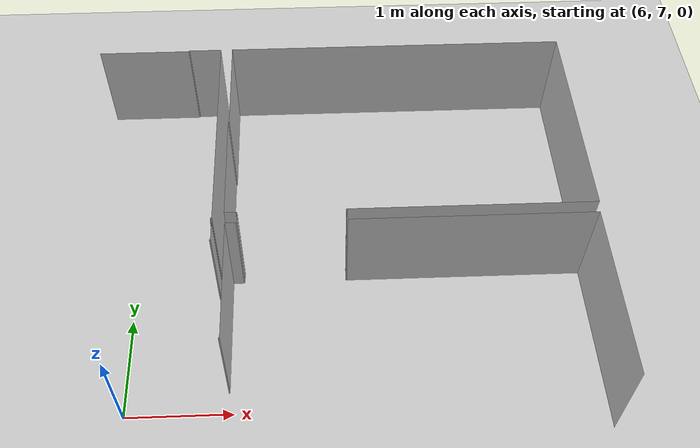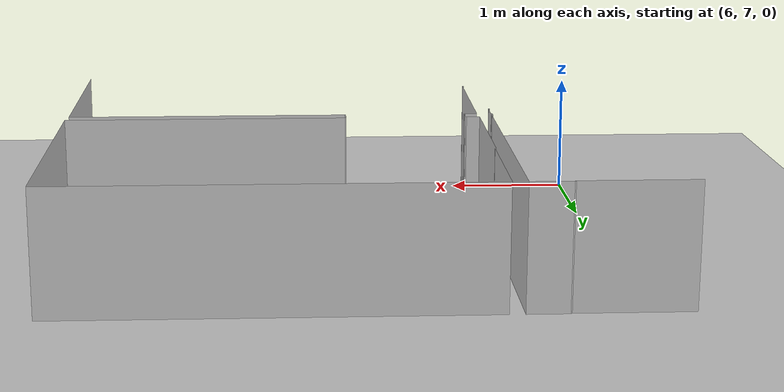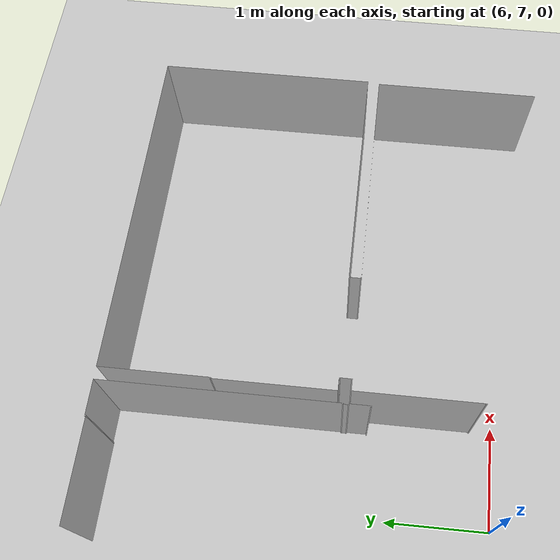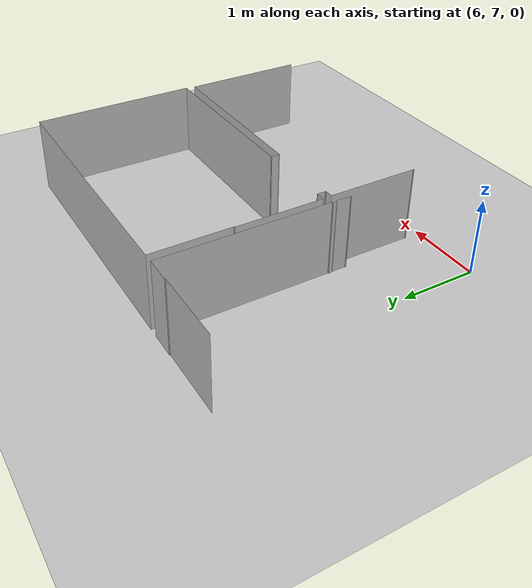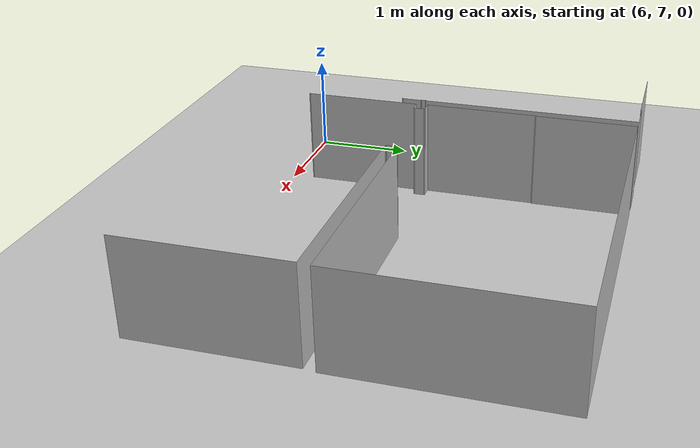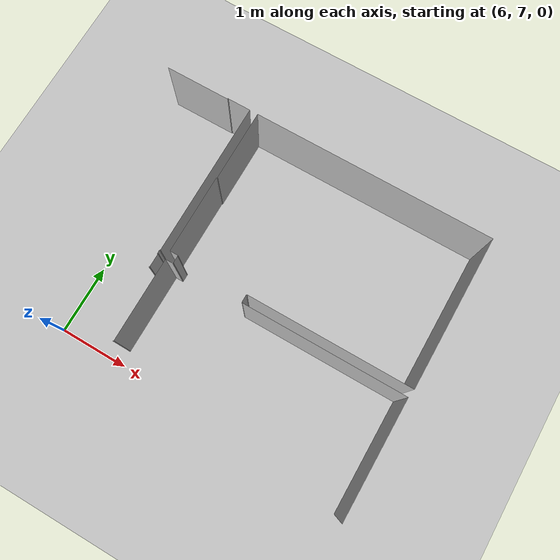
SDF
<sdf version="1.6">
 <world name="default">
  <model name="ground_plane">
   <static>1</static>
   <link name="link">
    <collision name="collision">
     <geometry><plane><normal>0 0 1</normal><size>100 100</size></plane></geometry>
     <surface><friction><ode><mu>100</mu><mu2>50</mu2></ode></friction></surface>
    </collision>
    <visual name="visual">
     <cast_shadows>0</cast_shadows>
     <geometry><plane><normal>0 0 1</normal><size>100 100</size></plane></geometry>
     <material>
      <script><uri>file://media/materials/scripts/gazebo.material</uri><name>Gazebo/Grey</name></script>
     </material>
    </visual>
   </link>
  </model>
  <model name="wall_46">
   <static>true</static>
   <link name="link">
    <collision name="collision"><geometry><box><size>0.9300000000000006 0.0 1</size></box></geometry></collision>
    <visual name="visual"><geometry><box><size>0.9300000000000006 0.0 1</size></box></geometry></visual>
   </link>
   <pose>6.025 10.7 0.5 0 0 0</pose>
  </model>
  <model name="wall_47">
   <static>true</static>
   <link name="link">
    <collision name="collision">
     <geometry><box><size>0.009999999999999787 0.010000000000001563 1</size></box></geometry>
    </collision>
    <visual name="visual">
     <geometry><box><size>0.009999999999999787 0.010000000000001563 1</size></box></geometry>
    </visual>
   </link>
   <pose>6.495 10.705 0.5 0 0 0</pose>
  </model>
  <model name="wall_48">
   <static>true</static>
   <link name="link">
    <collision name="collision"><geometry><box><size>0.33000000000000007 0.0 1</size></box></geometry></collision>
    <visual name="visual"><geometry><box><size>0.33000000000000007 0.0 1</size></box></geometry></visual>
   </link>
   <pose>6.665 10.71 0.5 0 0 0</pose>
  </model>
  <model name="wall_49">
   <static>true</static>
   <link name="link">
    <collision name="collision"><geometry><box><size>0.0 2.2300000000000004 1</size></box></geometry></collision>
    <visual name="visual"><geometry><box><size>0.0 2.2300000000000004 1</size></box></geometry></visual>
   </link>
   <pose>6.83 9.595 0.5 0 0 0</pose>
  </model>
  <model name="wall_50">
   <static>true</static>
   <link name="link">
    <collision name="collision">
     <geometry><box><size>0.009999999999999787 0.009999999999999787 1</size></box></geometry>
    </collision>
    <visual name="visual">
     <geometry><box><size>0.009999999999999787 0.009999999999999787 1</size></box></geometry>
    </visual>
   </link>
   <pose>6.825 8.475000000000001 0.5 0 0 0</pose>
  </model>
  <model name="wall_51">
   <static>true</static>
   <link name="link">
    <collision name="collision">
     <geometry><box><size>0.0 0.040000000000000924 1</size></box></geometry>
    </collision>
    <visual name="visual"><geometry><box><size>0.0 0.040000000000000924 1</size></box></geometry></visual>
   </link>
   <pose>6.82 8.45 0.5 0 0 0</pose>
  </model>
  <model name="wall_52">
   <static>true</static>
   <link name="link">
    <collision name="collision">
     <geometry><box><size>0.009999999999999787 0.009999999999999787 1</size></box></geometry>
    </collision>
    <visual name="visual">
     <geometry><box><size>0.009999999999999787 0.009999999999999787 1</size></box></geometry>
    </visual>
   </link>
   <pose>6.825 8.425 0.5 0 0 0</pose>
  </model>
  <model name="wall_53">
   <static>true</static>
   <link name="link">
    <collision name="collision"><geometry><box><size>0.0 0.1899999999999995 1</size></box></geometry></collision>
    <visual name="visual"><geometry><box><size>0.0 0.1899999999999995 1</size></box></geometry></visual>
   </link>
   <pose>6.83 8.325 0.5 0 0 0</pose>
  </model>
  <model name="wall_54">
   <static>true</static>
   <link name="link">
    <collision name="collision">
     <geometry><box><size>0.009999999999999787 0.009999999999999787 1</size></box></geometry>
    </collision>
    <visual name="visual">
     <geometry><box><size>0.009999999999999787 0.009999999999999787 1</size></box></geometry>
    </visual>
   </link>
   <pose>6.825 8.225000000000001 0.5 0 0 0</pose>
  </model>
  <model name="wall_60">
   <static>true</static>
   <link name="link">
    <collision name="collision">
     <geometry><box><size>0.009999999999999787 0.009999999999999787 1</size></box></geometry>
    </collision>
    <visual name="visual">
     <geometry><box><size>0.009999999999999787 0.009999999999999787 1</size></box></geometry>
    </visual>
   </link>
   <pose>6.945 7.215 0.5 0 0 0</pose>
  </model>
  <model name="wall_61">
   <static>true</static>
   <link name="link">
    <collision name="collision"><geometry><box><size>0.0 1.1900000000000004 1</size></box></geometry></collision>
    <visual name="visual"><geometry><box><size>0.0 1.1900000000000004 1</size></box></geometry></visual>
   </link>
   <pose>6.95 7.8149999999999995 0.5 0 0 0</pose>
  </model>
  <model name="wall_62">
   <static>true</static>
   <link name="link">
    <collision name="collision"><geometry><box><size>0.09999999999999964 0.0 1</size></box></geometry></collision>
    <visual name="visual"><geometry><box><size>0.09999999999999964 0.0 1</size></box></geometry></visual>
   </link>
   <pose>7.0 8.41 0.5 0 0 0</pose>
  </model>
  <model name="wall_63">
   <static>true</static>
   <link name="link">
    <collision name="collision">
     <geometry><box><size>0.009999999999999787 0.009999999999999787 1</size></box></geometry>
    </collision>
    <visual name="visual">
     <geometry><box><size>0.009999999999999787 0.009999999999999787 1</size></box></geometry>
    </visual>
   </link>
   <pose>7.055 8.415 0.5 0 0 0</pose>
  </model>
  <model name="wall_64">
   <static>true</static>
   <link name="link">
    <collision name="collision"><geometry><box><size>0.0 0.09999999999999964 1</size></box></geometry></collision>
    <visual name="visual"><geometry><box><size>0.0 0.09999999999999964 1</size></box></geometry></visual>
   </link>
   <pose>7.06 8.469999999999999 0.5 0 0 0</pose>
  </model>
  <model name="wall_65">
   <static>true</static>
   <link name="link">
    <collision name="collision">
     <geometry><box><size>0.009999999999999787 0.009999999999999787 1</size></box></geometry>
    </collision>
    <visual name="visual">
     <geometry><box><size>0.009999999999999787 0.009999999999999787 1</size></box></geometry>
    </visual>
   </link>
   <pose>7.055 8.524999999999999 0.5 0 0 0</pose>
  </model>
  <model name="wall_66">
   <static>true</static>
   <link name="link">
    <collision name="collision"><geometry><box><size>0.10999999999999943 0.0 1</size></box></geometry></collision>
    <visual name="visual"><geometry><box><size>0.10999999999999943 0.0 1</size></box></geometry></visual>
   </link>
   <pose>6.995 8.53 0.5 0 0 0</pose>
  </model>
  <model name="wall_67">
   <static>true</static>
   <link name="link">
    <collision name="collision"><geometry><box><size>0.0 1.1400000000000006 1</size></box></geometry></collision>
    <visual name="visual"><geometry><box><size>0.0 1.1400000000000006 1</size></box></geometry></visual>
   </link>
   <pose>6.94 9.1 0.5 0 0 0</pose>
  </model>
  <model name="wall_68">
   <static>true</static>
   <link name="link">
    <collision name="collision">
     <geometry><box><size>0.009999999999999787 0.009999999999999787 1</size></box></geometry>
    </collision>
    <visual name="visual">
     <geometry><box><size>0.009999999999999787 0.009999999999999787 1</size></box></geometry>
    </visual>
   </link>
   <pose>6.945 9.675 0.5 0 0 0</pose>
  </model>
  <model name="wall_69">
   <static>true</static>
   <link name="link">
    <collision name="collision"><geometry><box><size>0.0 1.0300000000000011 1</size></box></geometry></collision>
    <visual name="visual"><geometry><box><size>0.0 1.0300000000000011 1</size></box></geometry></visual>
   </link>
   <pose>6.95 10.195 0.5 0 0 0</pose>
  </model>
  <model name="wall_70">
   <static>true</static>
   <link name="link">
    <collision name="collision"><geometry><box><size>3.45 0.0 1</size></box></geometry></collision>
    <visual name="visual"><geometry><box><size>3.45 0.0 1</size></box></geometry></visual>
   </link>
   <pose>8.675 10.71 0.5 0 0 0</pose>
  </model>
  <model name="wall_71">
   <static>true</static>
   <link name="link">
    <collision name="collision"><geometry><box><size>0.0 2.1800000000000015 1</size></box></geometry></collision>
    <visual name="visual"><geometry><box><size>0.0 2.1800000000000015 1</size></box></geometry></visual>
   </link>
   <pose>10.4 9.620000000000001 0.5 0 0 0</pose>
  </model>
  <model name="wall_72">
   <static>true</static>
   <link name="link">
    <collision name="collision"><geometry><box><size>2.33 0.0 1</size></box></geometry></collision>
    <visual name="visual"><geometry><box><size>2.33 0.0 1</size></box></geometry></visual>
   </link>
   <pose>9.235 8.53 0.5 0 0 0</pose>
  </model>
  <model name="wall_73">
   <static>true</static>
   <link name="link">
    <collision name="collision">
     <geometry><box><size>0.009999999999999787 0.009999999999999787 1</size></box></geometry>
    </collision>
    <visual name="visual">
     <geometry><box><size>0.009999999999999787 0.009999999999999787 1</size></box></geometry>
    </visual>
   </link>
   <pose>8.065000000000001 8.524999999999999 0.5 0 0 0</pose>
  </model>
  <model name="wall_74">
   <static>true</static>
   <link name="link">
    <collision name="collision"><geometry><box><size>0.0 0.09999999999999964 1</size></box></geometry></collision>
    <visual name="visual"><geometry><box><size>0.0 0.09999999999999964 1</size></box></geometry></visual>
   </link>
   <pose>8.06 8.469999999999999 0.5 0 0 0</pose>
  </model>
  <model name="wall_75">
   <static>true</static>
   <link name="link">
    <collision name="collision">
     <geometry><box><size>0.009999999999999787 0.009999999999999787 1</size></box></geometry>
    </collision>
    <visual name="visual">
     <geometry><box><size>0.009999999999999787 0.009999999999999787 1</size></box></geometry>
    </visual>
   </link>
   <pose>8.065000000000001 8.415 0.5 0 0 0</pose>
  </model>
  <model name="wall_76">
   <static>true</static>
   <link name="link">
    <collision name="collision"><geometry><box><size>2.3100000000000005 0.0 1</size></box></geometry></collision>
    <visual name="visual"><geometry><box><size>2.3100000000000005 0.0 1</size></box></geometry></visual>
   </link>
   <pose>9.225000000000001 8.41 0.5 0 0 0</pose>
  </model>
  <model name="wall_77">
   <static>true</static>
   <link name="link">
    <collision name="collision"><geometry><box><size>0.0 1.6600000000000001 1</size></box></geometry></collision>
    <visual name="visual"><geometry><box><size>0.0 1.6600000000000001 1</size></box></geometry></visual>
   </link>
   <pose>10.38 7.58 0.5 0 0 0</pose>
  </model>
 </world>
</sdf>
